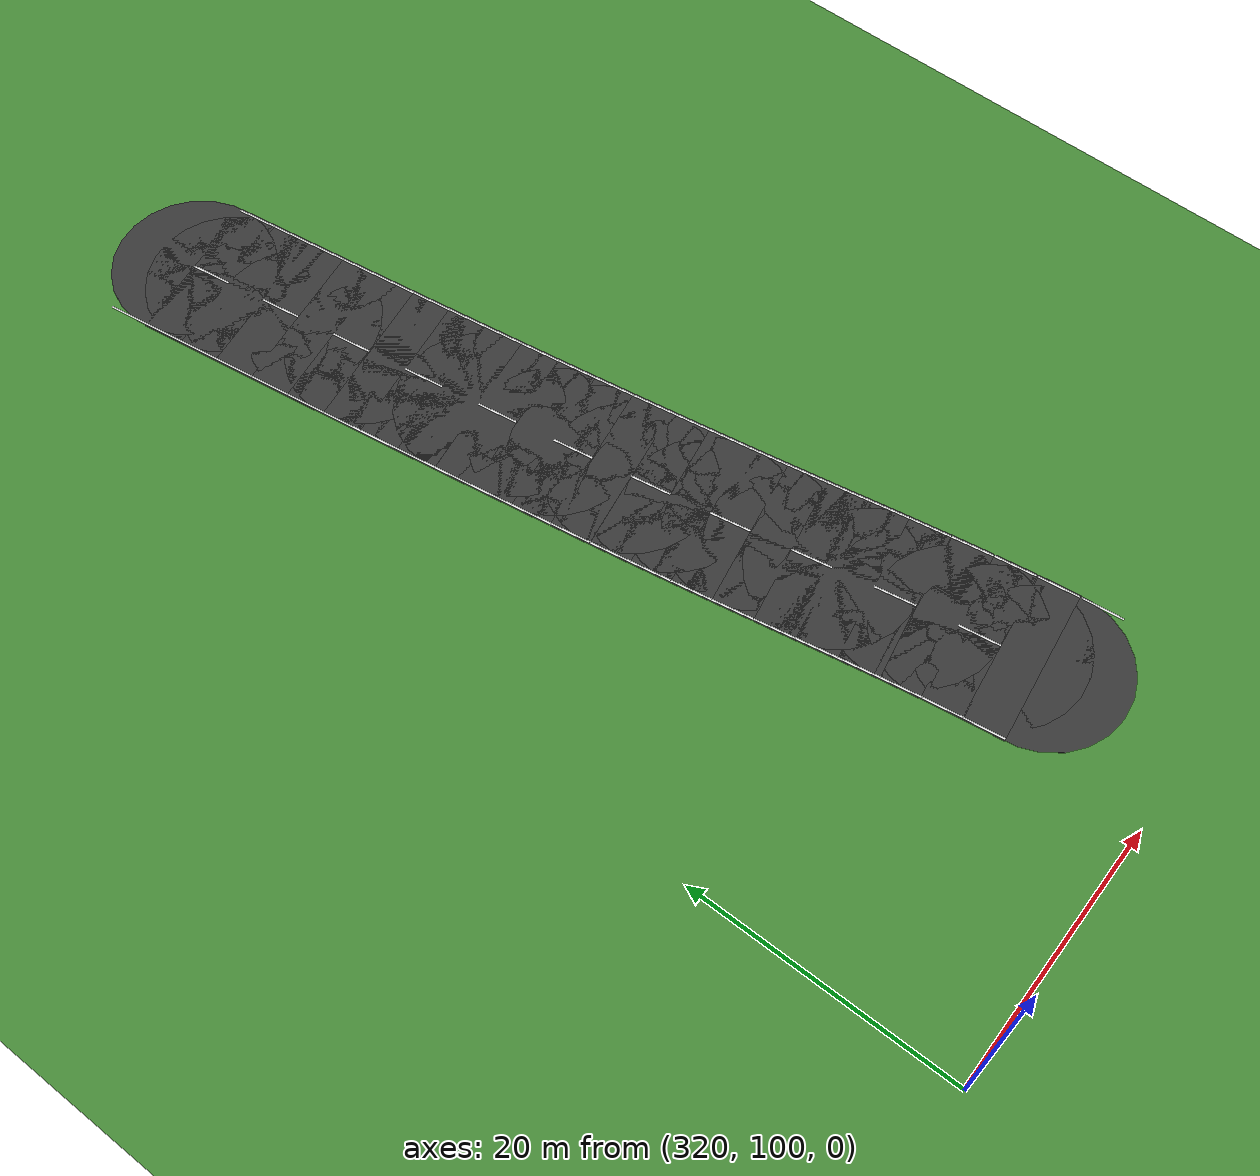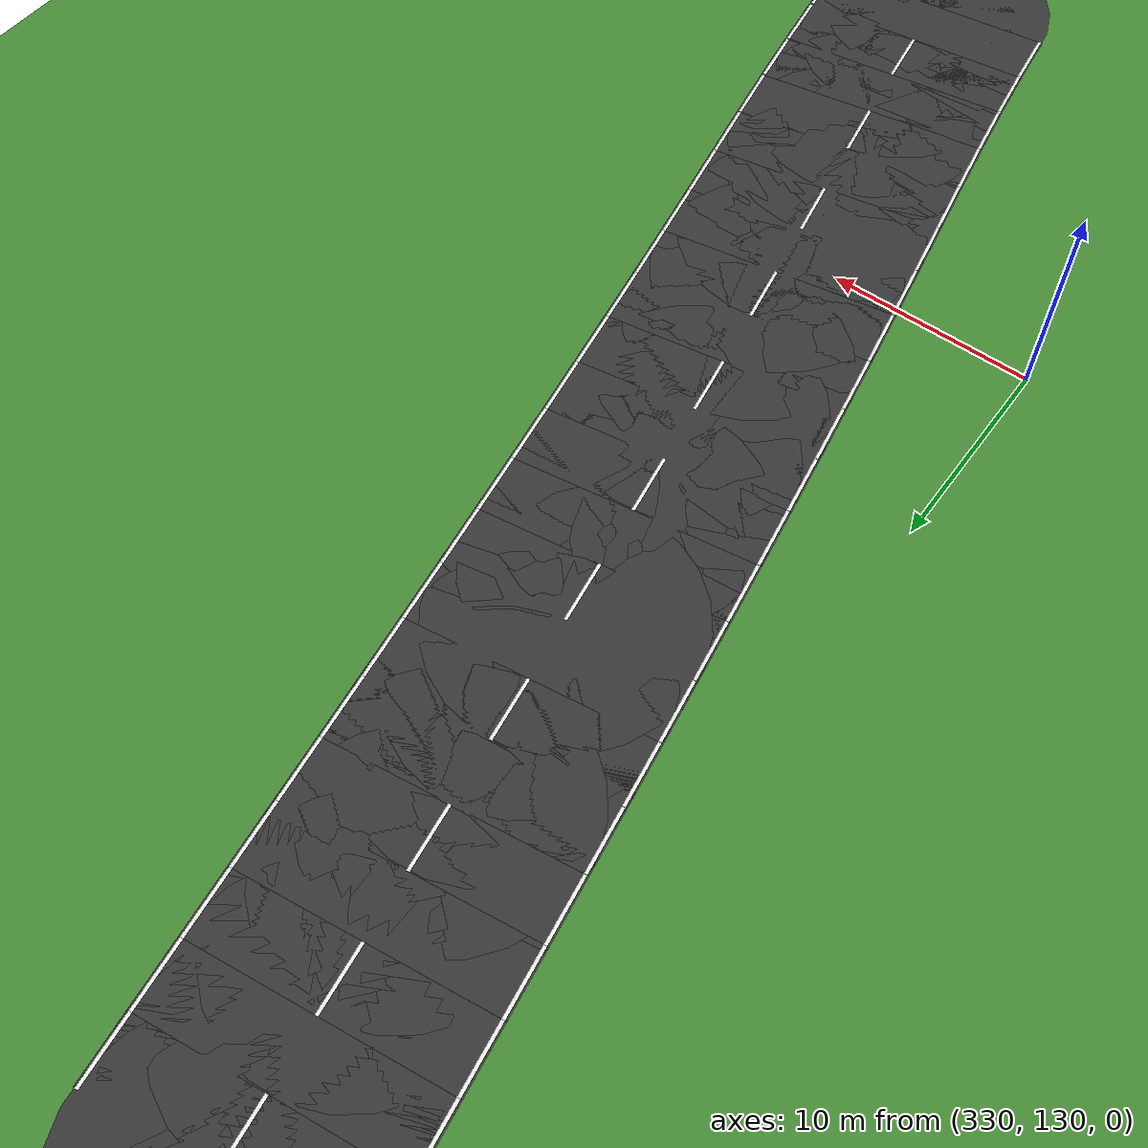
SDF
<sdf version="1.6">
 <world name="sem_silesia_ring_2026">
  <model name="ground_plane">
   <static>true</static>
   <link name="link">
    <collision name="collision">
     <geometry><plane><normal>0 0 1</normal><size>1200 1200</size></plane></geometry>
     <surface><friction><ode><mu>0.6</mu><mu2>0.6</mu2></ode></friction></surface>
    </collision>
    <visual name="visual">
     <geometry><plane><normal>0 0 1</normal><size>1200 1200</size></plane></geometry>
     <material><ambient>0.28 0.55 0.22 1</ambient><diffuse>0.28 0.55 0.22 1</diffuse></material>
    </visual>
   </link>
  </model>
  <model name="wl_R_s154">
   <static>true</static>
   <pose>351.8891 109.7286 0.0070 0 0 1.6789</pose>
   <link name="link">
    <visual name="v">
     <geometry><box><size>3.0025 0.1500 0.0080</size></box></geometry>
     <material><ambient>0.95 0.95 0.95 1</ambient><diffuse>0.95 0.95 0.95 1</diffuse></material>
    </visual>
   </link>
  </model>
  <model name="road_s155">
   <static>true</static>
   <pose>345.7161 112.0784 0.0030 0 0 1.7012</pose>
   <link name="link">
    <visual name="v">
     <geometry><box><size>3.0025 12.0000 0.0060</size></box></geometry>
     <material><ambient>0.22 0.22 0.22 1</ambient><diffuse>0.22 0.22 0.22 1</diffuse></material>
    </visual>
    <collision name="c">
     <geometry><box><size>3.0025 12.0000 0.0060</size></box></geometry>
     <surface><friction><ode><mu>0.9</mu><mu2>0.9</mu2></ode></friction></surface>
    </collision>
   </link>
  </model>
  <model name="road_jnt155">
   <static>true</static>
   <pose>345.9113 110.5899 0.0030 0 0 0</pose>
   <link name="link">
    <visual name="v">
     <geometry><cylinder><radius>6.0000</radius><length>0.0060</length></cylinder></geometry>
     <material><ambient>0.22 0.22 0.22 1</ambient><diffuse>0.22 0.22 0.22 1</diffuse></material>
    </visual>
    <collision name="c">
     <geometry><cylinder><radius>6.0000</radius><length>0.0060</length></cylinder></geometry>
     <surface><friction><ode><mu>0.9</mu><mu2>0.9</mu2></ode></friction></surface>
    </collision>
   </link>
  </model>
  <model name="wl_L_s155">
   <static>true</static>
   <pose>339.9158 111.3176 0.0070 0 0 1.7012</pose>
   <link name="link">
    <visual name="v">
     <geometry><box><size>3.0025 0.1500 0.0080</size></box></geometry>
     <material><ambient>0.95 0.95 0.95 1</ambient><diffuse>0.95 0.95 0.95 1</diffuse></material>
    </visual>
   </link>
  </model>
  <model name="wl_R_s155">
   <static>true</static>
   <pose>351.5164 112.8391 0.0070 0 0 1.7012</pose>
   <link name="link">
    <visual name="v">
     <geometry><box><size>3.0025 0.1500 0.0080</size></box></geometry>
     <material><ambient>0.95 0.95 0.95 1</ambient><diffuse>0.95 0.95 0.95 1</diffuse></material>
    </visual>
   </link>
  </model>
  <model name="road_s156">
   <static>true</static>
   <pose>345.2984 115.0515 0.0030 0 0 1.7195</pose>
   <link name="link">
    <visual name="v">
     <geometry><box><size>3.0025 12.0000 0.0060</size></box></geometry>
     <material><ambient>0.22 0.22 0.22 1</ambient><diffuse>0.22 0.22 0.22 1</diffuse></material>
    </visual>
    <collision name="c">
     <geometry><box><size>3.0025 12.0000 0.0060</size></box></geometry>
     <surface><friction><ode><mu>0.9</mu><mu2>0.9</mu2></ode></friction></surface>
    </collision>
   </link>
  </model>
  <model name="road_jnt156">
   <static>true</static>
   <pose>345.5208 113.5669 0.0030 0 0 0</pose>
   <link name="link">
    <visual name="v">
     <geometry><cylinder><radius>6.0000</radius><length>0.0060</length></cylinder></geometry>
     <material><ambient>0.22 0.22 0.22 1</ambient><diffuse>0.22 0.22 0.22 1</diffuse></material>
    </visual>
    <collision name="c">
     <geometry><cylinder><radius>6.0000</radius><length>0.0060</length></cylinder></geometry>
     <surface><friction><ode><mu>0.9</mu><mu2>0.9</mu2></ode></friction></surface>
    </collision>
   </link>
  </model>
  <model name="wl_L_s156">
   <static>true</static>
   <pose>339.5130 114.1846 0.0070 0 0 1.7195</pose>
   <link name="link">
    <visual name="v">
     <geometry><box><size>3.0025 0.1500 0.0080</size></box></geometry>
     <material><ambient>0.95 0.95 0.95 1</ambient><diffuse>0.95 0.95 0.95 1</diffuse></material>
    </visual>
   </link>
  </model>
  <model name="wl_R_s156">
   <static>true</static>
   <pose>351.0838 115.9185 0.0070 0 0 1.7195</pose>
   <link name="link">
    <visual name="v">
     <geometry><box><size>3.0025 0.1500 0.0080</size></box></geometry>
     <material><ambient>0.95 0.95 0.95 1</ambient><diffuse>0.95 0.95 0.95 1</diffuse></material>
    </visual>
   </link>
  </model>
  <model name="cd_s156">
   <static>true</static>
   <pose>345.2984 115.0515 0.0070 0 0 1.7195</pose>
   <link name="link">
    <visual name="v">
     <geometry><box><size>3.0025 0.1500 0.0080</size></box></geometry>
     <material><ambient>0.95 0.95 0.95 1</ambient><diffuse>0.95 0.95 0.95 1</diffuse></material>
    </visual>
   </link>
  </model>
  <model name="road_s157">
   <static>true</static>
   <pose>344.8325 118.0176 0.0030 0 0 1.7337</pose>
   <link name="link">
    <visual name="v">
     <geometry><box><size>3.0025 12.0000 0.0060</size></box></geometry>
     <material><ambient>0.22 0.22 0.22 1</ambient><diffuse>0.22 0.22 0.22 1</diffuse></material>
    </visual>
    <collision name="c">
     <geometry><box><size>3.0025 12.0000 0.0060</size></box></geometry>
     <surface><friction><ode><mu>0.9</mu><mu2>0.9</mu2></ode></friction></surface>
    </collision>
   </link>
  </model>
  <model name="road_jnt157">
   <static>true</static>
   <pose>345.0759 116.5362 0.0030 0 0 0</pose>
   <link name="link">
    <visual name="v">
     <geometry><cylinder><radius>6.0000</radius><length>0.0060</length></cylinder></geometry>
     <material><ambient>0.22 0.22 0.22 1</ambient><diffuse>0.22 0.22 0.22 1</diffuse></material>
    </visual>
    <collision name="c">
     <geometry><cylinder><radius>6.0000</radius><length>0.0060</length></cylinder></geometry>
     <surface><friction><ode><mu>0.9</mu><mu2>0.9</mu2></ode></friction></surface>
    </collision>
   </link>
  </model>
  <model name="wl_L_s157">
   <static>true</static>
   <pose>339.0599 117.0690 0.0070 0 0 1.7337</pose>
   <link name="link">
    <visual name="v">
     <geometry><box><size>3.0025 0.1500 0.0080</size></box></geometry>
     <material><ambient>0.95 0.95 0.95 1</ambient><diffuse>0.95 0.95 0.95 1</diffuse></material>
    </visual>
   </link>
  </model>
  <model name="wl_R_s157">
   <static>true</static>
   <pose>350.6050 118.9663 0.0070 0 0 1.7337</pose>
   <link name="link">
    <visual name="v">
     <geometry><box><size>3.0025 0.1500 0.0080</size></box></geometry>
     <material><ambient>0.95 0.95 0.95 1</ambient><diffuse>0.95 0.95 0.95 1</diffuse></material>
    </visual>
   </link>
  </model>
  <model name="road_s158">
   <static>true</static>
   <pose>344.3310 120.9779 0.0030 0 0 1.7435</pose>
   <link name="link">
    <visual name="v">
     <geometry><box><size>3.0025 12.0000 0.0060</size></box></geometry>
     <material><ambient>0.22 0.22 0.22 1</ambient><diffuse>0.22 0.22 0.22 1</diffuse></material>
    </visual>
    <collision name="c">
     <geometry><box><size>3.0025 12.0000 0.0060</size></box></geometry>
     <surface><friction><ode><mu>0.9</mu><mu2>0.9</mu2></ode></friction></surface>
    </collision>
   </link>
  </model>
  <model name="road_jnt158">
   <static>true</static>
   <pose>344.5890 119.4990 0.0030 0 0 0</pose>
   <link name="link">
    <visual name="v">
     <geometry><cylinder><radius>6.0000</radius><length>0.0060</length></cylinder></geometry>
     <material><ambient>0.22 0.22 0.22 1</ambient><diffuse>0.22 0.22 0.22 1</diffuse></material>
    </visual>
    <collision name="c">
     <geometry><cylinder><radius>6.0000</radius><length>0.0060</length></cylinder></geometry>
     <surface><friction><ode><mu>0.9</mu><mu2>0.9</mu2></ode></friction></surface>
    </collision>
   </link>
  </model>
  <model name="wl_L_s158">
   <static>true</static>
   <pose>338.5680 119.9725 0.0070 0 0 1.7435</pose>
   <link name="link">
    <visual name="v">
     <geometry><box><size>3.0025 0.1500 0.0080</size></box></geometry>
     <material><ambient>0.95 0.95 0.95 1</ambient><diffuse>0.95 0.95 0.95 1</diffuse></material>
    </visual>
   </link>
  </model>
  <model name="wl_R_s158">
   <static>true</static>
   <pose>350.0939 121.9834 0.0070 0 0 1.7435</pose>
   <link name="link">
    <visual name="v">
     <geometry><box><size>3.0025 0.1500 0.0080</size></box></geometry>
     <material><ambient>0.95 0.95 0.95 1</ambient><diffuse>0.95 0.95 0.95 1</diffuse></material>
    </visual>
   </link>
  </model>
  <model name="cd_s158">
   <static>true</static>
   <pose>344.3310 120.9779 0.0070 0 0 1.7435</pose>
   <link name="link">
    <visual name="v">
     <geometry><box><size>3.0025 0.1500 0.0080</size></box></geometry>
     <material><ambient>0.95 0.95 0.95 1</ambient><diffuse>0.95 0.95 0.95 1</diffuse></material>
    </visual>
   </link>
  </model>
  <model name="road_s159">
   <static>true</static>
   <pose>343.8069 123.9343 0.0030 0 0 1.7490</pose>
   <link name="link">
    <visual name="v">
     <geometry><box><size>3.0025 12.0000 0.0060</size></box></geometry>
     <material><ambient>0.22 0.22 0.22 1</ambient><diffuse>0.22 0.22 0.22 1</diffuse></material>
    </visual>
    <collision name="c">
     <geometry><box><size>3.0025 12.0000 0.0060</size></box></geometry>
     <surface><friction><ode><mu>0.9</mu><mu2>0.9</mu2></ode></friction></surface>
    </collision>
   </link>
  </model>
  <model name="road_jnt159">
   <static>true</static>
   <pose>344.0730 122.4569 0.0030 0 0 0</pose>
   <link name="link">
    <visual name="v">
     <geometry><cylinder><radius>6.0000</radius><length>0.0060</length></cylinder></geometry>
     <material><ambient>0.22 0.22 0.22 1</ambient><diffuse>0.22 0.22 0.22 1</diffuse></material>
    </visual>
    <collision name="c">
     <geometry><cylinder><radius>6.0000</radius><length>0.0060</length></cylinder></geometry>
     <surface><friction><ode><mu>0.9</mu><mu2>0.9</mu2></ode></friction></surface>
    </collision>
   </link>
  </model>
  <model name="wl_L_s159">
   <static>true</static>
   <pose>338.0495 122.8974 0.0070 0 0 1.7490</pose>
   <link name="link">
    <visual name="v">
     <geometry><box><size>3.0025 0.1500 0.0080</size></box></geometry>
     <material><ambient>0.95 0.95 0.95 1</ambient><diffuse>0.95 0.95 0.95 1</diffuse></material>
    </visual>
   </link>
  </model>
  <model name="wl_R_s159">
   <static>true</static>
   <pose>349.5642 124.9713 0.0070 0 0 1.7490</pose>
   <link name="link">
    <visual name="v">
     <geometry><box><size>3.0025 0.1500 0.0080</size></box></geometry>
     <material><ambient>0.95 0.95 0.95 1</ambient><diffuse>0.95 0.95 0.95 1</diffuse></material>
    </visual>
   </link>
  </model>
  <model name="road_s160">
   <static>true</static>
   <pose>343.2731 126.8891 0.0030 0 0 1.7500</pose>
   <link name="link">
    <visual name="v">
     <geometry><box><size>3.0025 12.0000 0.0060</size></box></geometry>
     <material><ambient>0.22 0.22 0.22 1</ambient><diffuse>0.22 0.22 0.22 1</diffuse></material>
    </visual>
    <collision name="c">
     <geometry><box><size>3.0025 12.0000 0.0060</size></box></geometry>
     <surface><friction><ode><mu>0.9</mu><mu2>0.9</mu2></ode></friction></surface>
    </collision>
   </link>
  </model>
  <model name="road_jnt160">
   <static>true</static>
   <pose>343.5408 125.4118 0.0030 0 0 0</pose>
   <link name="link">
    <visual name="v">
     <geometry><cylinder><radius>6.0000</radius><length>0.0060</length></cylinder></geometry>
     <material><ambient>0.22 0.22 0.22 1</ambient><diffuse>0.22 0.22 0.22 1</diffuse></material>
    </visual>
    <collision name="c">
     <geometry><cylinder><radius>6.0000</radius><length>0.0060</length></cylinder></geometry>
     <surface><friction><ode><mu>0.9</mu><mu2>0.9</mu2></ode></friction></surface>
    </collision>
   </link>
  </model>
  <model name="wl_L_s160">
   <static>true</static>
   <pose>337.5168 125.8460 0.0070 0 0 1.7500</pose>
   <link name="link">
    <visual name="v">
     <geometry><box><size>3.0025 0.1500 0.0080</size></box></geometry>
     <material><ambient>0.95 0.95 0.95 1</ambient><diffuse>0.95 0.95 0.95 1</diffuse></material>
    </visual>
   </link>
  </model>
  <model name="wl_R_s160">
   <static>true</static>
   <pose>349.0294 127.9321 0.0070 0 0 1.7500</pose>
   <link name="link">
    <visual name="v">
     <geometry><box><size>3.0025 0.1500 0.0080</size></box></geometry>
     <material><ambient>0.95 0.95 0.95 1</ambient><diffuse>0.95 0.95 0.95 1</diffuse></material>
    </visual>
   </link>
  </model>
  <model name="cd_s160">
   <static>true</static>
   <pose>343.2731 126.8891 0.0070 0 0 1.7500</pose>
   <link name="link">
    <visual name="v">
     <geometry><box><size>3.0025 0.1500 0.0080</size></box></geometry>
     <material><ambient>0.95 0.95 0.95 1</ambient><diffuse>0.95 0.95 0.95 1</diffuse></material>
    </visual>
   </link>
  </model>
  <model name="road_s161">
   <static>true</static>
   <pose>342.7423 129.8443 0.0030 0 0 1.7470</pose>
   <link name="link">
    <visual name="v">
     <geometry><box><size>3.0025 12.0000 0.0060</size></box></geometry>
     <material><ambient>0.22 0.22 0.22 1</ambient><diffuse>0.22 0.22 0.22 1</diffuse></material>
    </visual>
    <collision name="c">
     <geometry><box><size>3.0025 12.0000 0.0060</size></box></geometry>
     <surface><friction><ode><mu>0.9</mu><mu2>0.9</mu2></ode></friction></surface>
    </collision>
   </link>
  </model>
  <model name="road_jnt161">
   <static>true</static>
   <pose>343.0054 128.3663 0.0030 0 0 0</pose>
   <link name="link">
    <visual name="v">
     <geometry><cylinder><radius>6.0000</radius><length>0.0060</length></cylinder></geometry>
     <material><ambient>0.22 0.22 0.22 1</ambient><diffuse>0.22 0.22 0.22 1</diffuse></material>
    </visual>
    <collision name="c">
     <geometry><cylinder><radius>6.0000</radius><length>0.0060</length></cylinder></geometry>
     <surface><friction><ode><mu>0.9</mu><mu2>0.9</mu2></ode></friction></surface>
    </collision>
   </link>
  </model>
  <model name="wl_L_s161">
   <static>true</static>
   <pose>336.9828 128.8188 0.0070 0 0 1.7470</pose>
   <link name="link">
    <visual name="v">
     <geometry><box><size>3.0025 0.1500 0.0080</size></box></geometry>
     <material><ambient>0.95 0.95 0.95 1</ambient><diffuse>0.95 0.95 0.95 1</diffuse></material>
    </visual>
   </link>
  </model>
  <model name="wl_R_s161">
   <static>true</static>
   <pose>348.5017 130.8698 0.0070 0 0 1.7470</pose>
   <link name="link">
    <visual name="v">
     <geometry><box><size>3.0025 0.1500 0.0080</size></box></geometry>
     <material><ambient>0.95 0.95 0.95 1</ambient><diffuse>0.95 0.95 0.95 1</diffuse></material>
    </visual>
   </link>
  </model>
  <model name="road_s162">
   <static>true</static>
   <pose>342.2223 132.8015 0.0030 0 0 1.7427</pose>
   <link name="link">
    <visual name="v">
     <geometry><box><size>3.0025 12.0000 0.0060</size></box></geometry>
     <material><ambient>0.22 0.22 0.22 1</ambient><diffuse>0.22 0.22 0.22 1</diffuse></material>
    </visual>
    <collision name="c">
     <geometry><box><size>3.0025 12.0000 0.0060</size></box></geometry>
     <surface><friction><ode><mu>0.9</mu><mu2>0.9</mu2></ode></friction></surface>
    </collision>
   </link>
  </model>
  <model name="road_jnt162">
   <static>true</static>
   <pose>342.4791 131.3223 0.0030 0 0 0</pose>
   <link name="link">
    <visual name="v">
     <geometry><cylinder><radius>6.0000</radius><length>0.0060</length></cylinder></geometry>
     <material><ambient>0.22 0.22 0.22 1</ambient><diffuse>0.22 0.22 0.22 1</diffuse></material>
    </visual>
    <collision name="c">
     <geometry><cylinder><radius>6.0000</radius><length>0.0060</length></cylinder></geometry>
     <surface><friction><ode><mu>0.9</mu><mu2>0.9</mu2></ode></friction></surface>
    </collision>
   </link>
  </model>
  <model name="wl_L_s162">
   <static>true</static>
   <pose>336.4585 131.8008 0.0070 0 0 1.7427</pose>
   <link name="link">
    <visual name="v">
     <geometry><box><size>3.0025 0.1500 0.0080</size></box></geometry>
     <material><ambient>0.95 0.95 0.95 1</ambient><diffuse>0.95 0.95 0.95 1</diffuse></material>
    </visual>
   </link>
  </model>
  <model name="wl_R_s162">
   <static>true</static>
   <pose>347.9861 133.8021 0.0070 0 0 1.7427</pose>
   <link name="link">
    <visual name="v">
     <geometry><box><size>3.0025 0.1500 0.0080</size></box></geometry>
     <material><ambient>0.95 0.95 0.95 1</ambient><diffuse>0.95 0.95 0.95 1</diffuse></material>
    </visual>
   </link>
  </model>
  <model name="cd_s162">
   <static>true</static>
   <pose>342.2223 132.8015 0.0070 0 0 1.7427</pose>
   <link name="link">
    <visual name="v">
     <geometry><box><size>3.0025 0.1500 0.0080</size></box></geometry>
     <material><ambient>0.95 0.95 0.95 1</ambient><diffuse>0.95 0.95 0.95 1</diffuse></material>
    </visual>
   </link>
  </model>
  <model name="road_s163">
   <static>true</static>
   <pose>341.7147 135.7608 0.0030 0 0 1.7387</pose>
   <link name="link">
    <visual name="v">
     <geometry><box><size>3.0025 12.0000 0.0060</size></box></geometry>
     <material><ambient>0.22 0.22 0.22 1</ambient><diffuse>0.22 0.22 0.22 1</diffuse></material>
    </visual>
    <collision name="c">
     <geometry><box><size>3.0025 12.0000 0.0060</size></box></geometry>
     <surface><friction><ode><mu>0.9</mu><mu2>0.9</mu2></ode></friction></surface>
    </collision>
   </link>
  </model>
  <model name="road_jnt163">
   <static>true</static>
   <pose>341.9655 134.2806 0.0030 0 0 0</pose>
   <link name="link">
    <visual name="v">
     <geometry><cylinder><radius>6.0000</radius><length>0.0060</length></cylinder></geometry>
     <material><ambient>0.22 0.22 0.22 1</ambient><diffuse>0.22 0.22 0.22 1</diffuse></material>
    </visual>
    <collision name="c">
     <geometry><cylinder><radius>6.0000</radius><length>0.0060</length></cylinder></geometry>
     <surface><friction><ode><mu>0.9</mu><mu2>0.9</mu2></ode></friction></surface>
    </collision>
   </link>
  </model>
  <model name="wl_L_s163">
   <static>true</static>
   <pose>335.9469 134.7834 0.0070 0 0 1.7387</pose>
   <link name="link">
    <visual name="v">
     <geometry><box><size>3.0025 0.1500 0.0080</size></box></geometry>
     <material><ambient>0.95 0.95 0.95 1</ambient><diffuse>0.95 0.95 0.95 1</diffuse></material>
    </visual>
   </link>
  </model>
  <model name="wl_R_s163">
   <static>true</static>
   <pose>347.4824 136.7382 0.0070 0 0 1.7387</pose>
   <link name="link">
    <visual name="v">
     <geometry><box><size>3.0025 0.1500 0.0080</size></box></geometry>
     <material><ambient>0.95 0.95 0.95 1</ambient><diffuse>0.95 0.95 0.95 1</diffuse></material>
    </visual>
   </link>
  </model>
  <model name="road_s164">
   <static>true</static>
   <pose>341.2185 138.7220 0.0030 0 0 1.7349</pose>
   <link name="link">
    <visual name="v">
     <geometry><box><size>3.0025 12.0000 0.0060</size></box></geometry>
     <material><ambient>0.22 0.22 0.22 1</ambient><diffuse>0.22 0.22 0.22 1</diffuse></material>
    </visual>
    <collision name="c">
     <geometry><box><size>3.0025 12.0000 0.0060</size></box></geometry>
     <surface><friction><ode><mu>0.9</mu><mu2>0.9</mu2></ode></friction></surface>
    </collision>
   </link>
  </model>
  <model name="road_jnt164">
   <static>true</static>
   <pose>341.4638 137.2409 0.0030 0 0 0</pose>
   <link name="link">
    <visual name="v">
     <geometry><cylinder><radius>6.0000</radius><length>0.0060</length></cylinder></geometry>
     <material><ambient>0.22 0.22 0.22 1</ambient><diffuse>0.22 0.22 0.22 1</diffuse></material>
    </visual>
    <collision name="c">
     <geometry><cylinder><radius>6.0000</radius><length>0.0060</length></cylinder></geometry>
     <surface><friction><ode><mu>0.9</mu><mu2>0.9</mu2></ode></friction></surface>
    </collision>
   </link>
  </model>
  <model name="wl_L_s164">
   <static>true</static>
   <pose>335.4472 137.7661 0.0070 0 0 1.7349</pose>
   <link name="link">
    <visual name="v">
     <geometry><box><size>3.0025 0.1500 0.0080</size></box></geometry>
     <material><ambient>0.95 0.95 0.95 1</ambient><diffuse>0.95 0.95 0.95 1</diffuse></material>
    </visual>
   </link>
  </model>
  <model name="wl_R_s164">
   <static>true</static>
   <pose>346.9899 139.6780 0.0070 0 0 1.7349</pose>
   <link name="link">
    <visual name="v">
     <geometry><box><size>3.0025 0.1500 0.0080</size></box></geometry>
     <material><ambient>0.95 0.95 0.95 1</ambient><diffuse>0.95 0.95 0.95 1</diffuse></material>
    </visual>
   </link>
  </model>
  <model name="cd_s164">
   <static>true</static>
   <pose>341.2185 138.7220 0.0070 0 0 1.7349</pose>
   <link name="link">
    <visual name="v">
     <geometry><box><size>3.0025 0.1500 0.0080</size></box></geometry>
     <material><ambient>0.95 0.95 0.95 1</ambient><diffuse>0.95 0.95 0.95 1</diffuse></material>
    </visual>
   </link>
  </model>
  <model name="road_s165">
   <static>true</static>
   <pose>340.7330 141.6850 0.0030 0 0 1.7315</pose>
   <link name="link">
    <visual name="v">
     <geometry><box><size>3.0025 12.0000 0.0060</size></box></geometry>
     <material><ambient>0.22 0.22 0.22 1</ambient><diffuse>0.22 0.22 0.22 1</diffuse></material>
    </visual>
    <collision name="c">
     <geometry><box><size>3.0025 12.0000 0.0060</size></box></geometry>
     <surface><friction><ode><mu>0.9</mu><mu2>0.9</mu2></ode></friction></surface>
    </collision>
   </link>
  </model>
  <model name="road_jnt165">
   <static>true</static>
   <pose>340.9732 140.2031 0.0030 0 0 0</pose>
   <link name="link">
    <visual name="v">
     <geometry><cylinder><radius>6.0000</radius><length>0.0060</length></cylinder></geometry>
     <material><ambient>0.22 0.22 0.22 1</ambient><diffuse>0.22 0.22 0.22 1</diffuse></material>
    </visual>
    <collision name="c">
     <geometry><cylinder><radius>6.0000</radius><length>0.0060</length></cylinder></geometry>
     <surface><friction><ode><mu>0.9</mu><mu2>0.9</mu2></ode></friction></surface>
    </collision>
   </link>
  </model>
  <model name="wl_L_s165">
   <static>true</static>
   <pose>334.9584 140.7488 0.0070 0 0 1.7315</pose>
   <link name="link">
    <visual name="v">
     <geometry><box><size>3.0025 0.1500 0.0080</size></box></geometry>
     <material><ambient>0.95 0.95 0.95 1</ambient><diffuse>0.95 0.95 0.95 1</diffuse></material>
    </visual>
   </link>
  </model>
  <model name="wl_R_s165">
   <static>true</static>
   <pose>346.5076 142.6212 0.0070 0 0 1.7315</pose>
   <link name="link">
    <visual name="v">
     <geometry><box><size>3.0025 0.1500 0.0080</size></box></geometry>
     <material><ambient>0.95 0.95 0.95 1</ambient><diffuse>0.95 0.95 0.95 1</diffuse></material>
    </visual>
   </link>
  </model>
  <model name="road_s166">
   <static>true</static>
   <pose>340.2571 144.6496 0.0030 0 0 1.7284</pose>
   <link name="link">
    <visual name="v">
     <geometry><box><size>3.0025 12.0000 0.0060</size></box></geometry>
     <material><ambient>0.22 0.22 0.22 1</ambient><diffuse>0.22 0.22 0.22 1</diffuse></material>
    </visual>
    <collision name="c">
     <geometry><box><size>3.0025 12.0000 0.0060</size></box></geometry>
     <surface><friction><ode><mu>0.9</mu><mu2>0.9</mu2></ode></friction></surface>
    </collision>
   </link>
  </model>
  <model name="road_jnt166">
   <static>true</static>
   <pose>340.4927 143.1669 0.0030 0 0 0</pose>
   <link name="link">
    <visual name="v">
     <geometry><cylinder><radius>6.0000</radius><length>0.0060</length></cylinder></geometry>
     <material><ambient>0.22 0.22 0.22 1</ambient><diffuse>0.22 0.22 0.22 1</diffuse></material>
    </visual>
    <collision name="c">
     <geometry><cylinder><radius>6.0000</radius><length>0.0060</length></cylinder></geometry>
     <surface><friction><ode><mu>0.9</mu><mu2>0.9</mu2></ode></friction></surface>
    </collision>
   </link>
  </model>
  <model name="wl_L_s166">
   <static>true</static>
   <pose>334.4796 143.7315 0.0070 0 0 1.7284</pose>
   <link name="link">
    <visual name="v">
     <geometry><box><size>3.0025 0.1500 0.0080</size></box></geometry>
     <material><ambient>0.95 0.95 0.95 1</ambient><diffuse>0.95 0.95 0.95 1</diffuse></material>
    </visual>
   </link>
  </model>
  <model name="wl_R_s166">
   <static>true</static>
   <pose>346.0346 145.5677 0.0070 0 0 1.7284</pose>
   <link name="link">
    <visual name="v">
     <geometry><box><size>3.0025 0.1500 0.0080</size></box></geometry>
     <material><ambient>0.95 0.95 0.95 1</ambient><diffuse>0.95 0.95 0.95 1</diffuse></material>
    </visual>
   </link>
  </model>
  <model name="cd_s166">
   <static>true</static>
   <pose>340.2571 144.6496 0.0070 0 0 1.7284</pose>
   <link name="link">
    <visual name="v">
     <geometry><box><size>3.0025 0.1500 0.0080</size></box></geometry>
     <material><ambient>0.95 0.95 0.95 1</ambient><diffuse>0.95 0.95 0.95 1</diffuse></material>
    </visual>
   </link>
  </model>
  <model name="road_s167">
   <static>true</static>
   <pose>339.7901 147.6156 0.0030 0 0 1.7256</pose>
   <link name="link">
    <visual name="v">
     <geometry><box><size>3.0025 12.0000 0.0060</size></box></geometry>
     <material><ambient>0.22 0.22 0.22 1</ambient><diffuse>0.22 0.22 0.22 1</diffuse></material>
    </visual>
    <collision name="c">
     <geometry><box><size>3.0025 12.0000 0.0060</size></box></geometry>
     <surface><friction><ode><mu>0.9</mu><mu2>0.9</mu2></ode></friction></surface>
    </collision>
   </link>
  </model>
  <model name="road_jnt167">
   <static>true</static>
   <pose>340.0215 146.1323 0.0030 0 0 0</pose>
   <link name="link">
    <visual name="v">
     <geometry><cylinder><radius>6.0000</radius><length>0.0060</length></cylinder></geometry>
     <material><ambient>0.22 0.22 0.22 1</ambient><diffuse>0.22 0.22 0.22 1</diffuse></material>
    </visual>
    <collision name="c">
     <geometry><cylinder><radius>6.0000</radius><length>0.0060</length></cylinder></geometry>
     <surface><friction><ode><mu>0.9</mu><mu2>0.9</mu2></ode></friction></surface>
    </collision>
   </link>
  </model>
  <model name="wl_L_s167">
   <static>true</static>
   <pose>334.0100 146.7139 0.0070 0 0 1.7256</pose>
   <link name="link">
    <visual name="v">
     <geometry><box><size>3.0025 0.1500 0.0080</size></box></geometry>
     <material><ambient>0.95 0.95 0.95 1</ambient><diffuse>0.95 0.95 0.95 1</diffuse></material>
    </visual>
   </link>
  </model>
  <model name="wl_R_s167">
   <static>true</static>
   <pose>345.5701 148.5173 0.0070 0 0 1.7256</pose>
   <link name="link">
    <visual name="v">
     <geometry><box><size>3.0025 0.1500 0.0080</size></box></geometry>
     <material><ambient>0.95 0.95 0.95 1</ambient><diffuse>0.95 0.95 0.95 1</diffuse></material>
    </visual>
   </link>
  </model>
  <model name="road_s168">
   <static>true</static>
   <pose>339.3310 150.5828 0.0030 0 0 1.7230</pose>
   <link name="link">
    <visual name="v">
     <geometry><box><size>3.0025 12.0000 0.0060</size></box></geometry>
     <material><ambient>0.22 0.22 0.22 1</ambient><diffuse>0.22 0.22 0.22 1</diffuse></material>
    </visual>
    <collision name="c">
     <geometry><box><size>3.0025 12.0000 0.0060</size></box></geometry>
     <surface><friction><ode><mu>0.9</mu><mu2>0.9</mu2></ode></friction></surface>
    </collision>
   </link>
  </model>
  <model name="road_jnt168">
   <static>true</static>
   <pose>339.5586 149.0989 0.0030 0 0 0</pose>
   <link name="link">
    <visual name="v">
     <geometry><cylinder><radius>6.0000</radius><length>0.0060</length></cylinder></geometry>
     <material><ambient>0.22 0.22 0.22 1</ambient><diffuse>0.22 0.22 0.22 1</diffuse></material>
    </visual>
    <collision name="c">
     <geometry><cylinder><radius>6.0000</radius><length>0.0060</length></cylinder></geometry>
     <surface><friction><ode><mu>0.9</mu><mu2>0.9</mu2></ode></friction></surface>
    </collision>
   </link>
  </model>
  <model name="wl_L_s168">
   <static>true</static>
   <pose>333.5486 149.6958 0.0070 0 0 1.7230</pose>
   <link name="link">
    <visual name="v">
     <geometry><box><size>3.0025 0.1500 0.0080</size></box></geometry>
     <material><ambient>0.95 0.95 0.95 1</ambient><diffuse>0.95 0.95 0.95 1</diffuse></material>
    </visual>
   </link>
  </model>
  <model name="wl_R_s168">
   <static>true</static>
   <pose>345.1134 151.4698 0.0070 0 0 1.7230</pose>
   <link name="link">
    <visual name="v">
     <geometry><box><size>3.0025 0.1500 0.0080</size></box></geometry>
     <material><ambient>0.95 0.95 0.95 1</ambient><diffuse>0.95 0.95 0.95 1</diffuse></material>
    </visual>
   </link>
  </model>
  <model name="cd_s168">
   <static>true</static>
   <pose>339.3310 150.5828 0.0070 0 0 1.7230</pose>
   <link name="link">
    <visual name="v">
     <geometry><box><size>3.0025 0.1500 0.0080</size></box></geometry>
     <material><ambient>0.95 0.95 0.95 1</ambient><diffuse>0.95 0.95 0.95 1</diffuse></material>
    </visual>
   </link>
  </model>
  <model name="road_s169">
   <static>true</static>
   <pose>338.8791 153.5512 0.0030 0 0 1.7207</pose>
   <link name="link">
    <visual name="v">
     <geometry><box><size>3.0025 12.0000 0.0060</size></box></geometry>
     <material><ambient>0.22 0.22 0.22 1</ambient><diffuse>0.22 0.22 0.22 1</diffuse></material>
    </visual>
    <collision name="c">
     <geometry><box><size>3.0025 12.0000 0.0060</size></box></geometry>
     <surface><friction><ode><mu>0.9</mu><mu2>0.9</mu2></ode></friction></surface>
    </collision>
   </link>
  </model>
  <model name="road_jnt169">
   <static>true</static>
   <pose>339.1034 152.0667 0.0030 0 0 0</pose>
   <link name="link">
    <visual name="v">
     <geometry><cylinder><radius>6.0000</radius><length>0.0060</length></cylinder></geometry>
     <material><ambient>0.22 0.22 0.22 1</ambient><diffuse>0.22 0.22 0.22 1</diffuse></material>
    </visual>
    <collision name="c">
     <geometry><cylinder><radius>6.0000</radius><length>0.0060</length></cylinder></geometry>
     <surface><friction><ode><mu>0.9</mu><mu2>0.9</mu2></ode></friction></surface>
    </collision>
   </link>
  </model>
  <model name="wl_L_s169">
   <static>true</static>
   <pose>333.0948 152.6773 0.0070 0 0 1.7207</pose>
   <link name="link">
    <visual name="v">
     <geometry><box><size>3.0025 0.1500 0.0080</size></box></geometry>
     <material><ambient>0.95 0.95 0.95 1</ambient><diffuse>0.95 0.95 0.95 1</diffuse></material>
    </visual>
   </link>
  </model>
  <model name="wl_R_s169">
   <static>true</static>
   <pose>344.6635 154.4250 0.0070 0 0 1.7207</pose>
   <link name="link">
    <visual name="v">
     <geometry><box><size>3.0025 0.1500 0.0080</size></box></geometry>
     <material><ambient>0.95 0.95 0.95 1</ambient><diffuse>0.95 0.95 0.95 1</diffuse></material>
    </visual>
   </link>
  </model>
  <model name="road_s170">
   <static>true</static>
   <pose>338.4336 156.5205 0.0030 0 0 1.7187</pose>
   <link name="link">
    <visual name="v">
     <geometry><box><size>3.0025 12.0000 0.0060</size></box></geometry>
     <material><ambient>0.22 0.22 0.22 1</ambient><diffuse>0.22 0.22 0.22 1</diffuse></material>
    </visual>
    <collision name="c">
     <geometry><box><size>3.0025 12.0000 0.0060</size></box></geometry>
     <surface><friction><ode><mu>0.9</mu><mu2>0.9</mu2></ode></friction></surface>
    </collision>
   </link>
  </model>
  <model name="road_jnt170">
   <static>true</static>
   <pose>338.6549 155.0356 0.0030 0 0 0</pose>
   <link name="link">
    <visual name="v">
     <geometry><cylinder><radius>6.0000</radius><length>0.0060</length></cylinder></geometry>
     <material><ambient>0.22 0.22 0.22 1</ambient><diffuse>0.22 0.22 0.22 1</diffuse></material>
    </visual>
    <collision name="c">
     <geometry><cylinder><radius>6.0000</radius><length>0.0060</length></cylinder></geometry>
     <surface><friction><ode><mu>0.9</mu><mu2>0.9</mu2></ode></friction></surface>
    </collision>
   </link>
  </model>
  <model name="wl_L_s170">
   <static>true</static>
   <pose>332.6475 155.6581 0.0070 0 0 1.7187</pose>
   <link name="link">
    <visual name="v">
     <geometry><box><size>3.0025 0.1500 0.0080</size></box></geometry>
     <material><ambient>0.95 0.95 0.95 1</ambient><diffuse>0.95 0.95 0.95 1</diffuse></material>
    </visual>
   </link>
  </model>
  <model name="wl_R_s170">
   <static>true</static>
   <pose>344.2197 157.3828 0.0070 0 0 1.7187</pose>
   <link name="link">
    <visual name="v">
     <geometry><box><size>3.0025 0.1500 0.0080</size></box></geometry>
     <material><ambient>0.95 0.95 0.95 1</ambient><diffuse>0.95 0.95 0.95 1</diffuse></material>
    </visual>
   </link>
  </model>
  <model name="cd_s170">
   <static>true</static>
   <pose>338.4336 156.5205 0.0070 0 0 1.7187</pose>
   <link name="link">
    <visual name="v">
     <geometry><box><size>3.0025 0.1500 0.0080</size></box></geometry>
     <material><ambient>0.95 0.95 0.95 1</ambient><diffuse>0.95 0.95 0.95 1</diffuse></material>
    </visual>
   </link>
  </model>
  <model name="road_s171">
   <static>true</static>
   <pose>337.9935 159.4906 0.0030 0 0 1.7170</pose>
   <link name="link">
    <visual name="v">
     <geometry><box><size>3.0025 12.0000 0.0060</size></box></geometry>
     <material><ambient>0.22 0.22 0.22 1</ambient><diffuse>0.22 0.22 0.22 1</diffuse></material>
    </visual>
    <collision name="c">
     <geometry><box><size>3.0025 12.0000 0.0060</size></box></geometry>
     <surface><friction><ode><mu>0.9</mu><mu2>0.9</mu2></ode></friction></surface>
    </collision>
   </link>
  </model>
  <model name="road_jnt171">
   <static>true</static>
   <pose>338.2123 158.0053 0.0030 0 0 0</pose>
   <link name="link">
    <visual name="v">
     <geometry><cylinder><radius>6.0000</radius><length>0.0060</length></cylinder></geometry>
     <material><ambient>0.22 0.22 0.22 1</ambient><diffuse>0.22 0.22 0.22 1</diffuse></material>
    </visual>
    <collision name="c">
     <geometry><cylinder><radius>6.0000</radius><length>0.0060</length></cylinder></geometry>
     <surface><friction><ode><mu>0.9</mu><mu2>0.9</mu2></ode></friction></surface>
    </collision>
   </link>
  </model>
  <model name="wl_L_s171">
   <static>true</static>
   <pose>332.2059 158.6381 0.0070 0 0 1.7170</pose>
   <link name="link">
    <visual name="v">
     <geometry><box><size>3.0025 0.1500 0.0080</size></box></geometry>
     <material><ambient>0.95 0.95 0.95 1</ambient><diffuse>0.95 0.95 0.95 1</diffuse></material>
    </visual>
   </link>
  </model>
  <model name="wl_R_s171">
   <static>true</static>
   <pose>343.7811 160.3430 0.0070 0 0 1.7170</pose>
   <link name="link">
    <visual name="v">
     <geometry><box><size>3.0025 0.1500 0.0080</size></box></geometry>
     <material><ambient>0.95 0.95 0.95 1</ambient><diffuse>0.95 0.95 0.95 1</diffuse></material>
    </visual>
   </link>
  </model>
  <model name="road_s172">
   <static>true</static>
   <pose>337.5581 162.4614 0.0030 0 0 1.7156</pose>
   <link name="link">
    <visual name="v">
     <geometry><box><size>3.0025 12.0000 0.0060</size></box></geometry>
     <material><ambient>0.22 0.22 0.22 1</ambient><diffuse>0.22 0.22 0.22 1</diffuse></material>
    </visual>
    <collision name="c">
     <geometry><box><size>3.0025 12.0000 0.0060</size></box></geometry>
     <surface><friction><ode><mu>0.9</mu><mu2>0.9</mu2></ode></friction></surface>
    </collision>
   </link>
  </model>
  <model name="road_jnt172">
   <static>true</static>
   <pose>337.7747 160.9758 0.0030 0 0 0</pose>
   <link name="link">
    <visual name="v">
     <geometry><cylinder><radius>6.0000</radius><length>0.0060</length></cylinder></geometry>
     <material><ambient>0.22 0.22 0.22 1</ambient><diffuse>0.22 0.22 0.22 1</diffuse></material>
    </visual>
    <collision name="c">
     <geometry><cylinder><radius>6.0000</radius><length>0.0060</length></cylinder></geometry>
     <surface><friction><ode><mu>0.9</mu><mu2>0.9</mu2></ode></friction></surface>
    </collision>
   </link>
  </model>
  <model name="wl_L_s172">
   <static>true</static>
   <pose>331.7693 161.6172 0.0070 0 0 1.7156</pose>
   <link name="link">
    <visual name="v">
     <geometry><box><size>3.0025 0.1500 0.0080</size></box></geometry>
     <material><ambient>0.95 0.95 0.95 1</ambient><diffuse>0.95 0.95 0.95 1</diffuse></material>
    </visual>
   </link>
  </model>
  <model name="wl_R_s172">
   <static>true</static>
   <pose>343.3469 163.3056 0.0070 0 0 1.7156</pose>
   <link name="link">
    <visual name="v">
     <geometry><box><size>3.0025 0.1500 0.0080</size></box></geometry>
     <material><ambient>0.95 0.95 0.95 1</ambient><diffuse>0.95 0.95 0.95 1</diffuse></material>
    </visual>
   </link>
  </model>
  <model name="cd_s172">
   <static>true</static>
   <pose>337.5581 162.4614 0.0070 0 0 1.7156</pose>
   <link name="link">
    <visual name="v">
     <geometry><box><size>3.0025 0.1500 0.0080</size></box></geometry>
     <material><ambient>0.95 0.95 0.95 1</ambient><diffuse>0.95 0.95 0.95 1</diffuse></material>
    </visual>
   </link>
  </model>
  <model name="road_s173">
   <static>true</static>
   <pose>337.1264 165.4327 0.0030 0 0 1.7145</pose>
   <link name="link">
    <visual name="v">
     <geometry><box><size>3.0025 12.0000 0.0060</size></box></geometry>
     <material><ambient>0.22 0.22 0.22 1</ambient><diffuse>0.22 0.22 0.22 1</diffuse></material>
    </visual>
    <collision name="c">
     <geometry><box><size>3.0025 12.0000 0.0060</size></box></geometry>
     <surface><friction><ode><mu>0.9</mu><mu2>0.9</mu2></ode></friction></surface>
    </collision>
   </link>
  </model>
  <model name="road_jnt173">
   <static>true</static>
   <pose>337.3414 163.9469 0.0030 0 0 0</pose>
   <link name="link">
    <visual name="v">
     <geometry><cylinder><radius>6.0000</radius><length>0.0060</length></cylinder></geometry>
     <material><ambient>0.22 0.22 0.22 1</ambient><diffuse>0.22 0.22 0.22 1</diffuse></material>
    </visual>
    <collision name="c">
     <geometry><cylinder><radius>6.0000</radius><length>0.0060</length></cylinder></geometry>
     <surface><friction><ode><mu>0.9</mu><mu2>0.9</mu2></ode></friction></surface>
    </collision>
   </link>
  </model>
  <model name="wl_L_s173">
   <static>true</static>
   <pose>331.3367 164.5949 0.0070 0 0 1.7145</pose>
   <link name="link">
    <visual name="v">
     <geometry><box><size>3.0025 0.1500 0.0080</size></box></geometry>
     <material><ambient>0.95 0.95 0.95 1</ambient><diffuse>0.95 0.95 0.95 1</diffuse></material>
    </visual>
   </link>
  </model>
  <model name="wl_R_s173">
   <static>true</static>
   <pose>342.9161 166.2706 0.0070 0 0 1.7145</pose>
   <link name="link">
    <visual name="v">
     <geometry><box><size>3.0025 0.1500 0.0080</size></box></geometry>
     <material><ambient>0.95 0.95 0.95 1</ambient><diffuse>0.95 0.95 0.95 1</diffuse></material>
    </visual>
   </link>
  </model>
  <model name="road_s174">
   <static>true</static>
   <pose>336.6975 168.4045 0.0030 0 0 1.7138</pose>
   <link name="link">
    <visual name="v">
     <geometry><box><size>3.0025 12.0000 0.0060</size></box></geometry>
     <material><ambient>0.22 0.22 0.22 1</ambient><diffuse>0.22 0.22 0.22 1</diffuse></material>
    </visual>
    <collision name="c">
     <geometry><box><size>3.0025 12.0000 0.0060</size></box></geometry>
     <surface><friction><ode><mu>0.9</mu><mu2>0.9</mu2></ode></friction></surface>
    </collision>
   </link>
  </model>
  <model name="road_jnt174">
   <static>true</static>
   <pose>336.9114 166.9185 0.0030 0 0 0</pose>
   <link name="link">
    <visual name="v">
     <geometry><cylinder><radius>6.0000</radius><length>0.0060</length></cylinder></geometry>
     <material><ambient>0.22 0.22 0.22 1</ambient><diffuse>0.22 0.22 0.22 1</diffuse></material>
    </visual>
    <collision name="c">
     <geometry><cylinder><radius>6.0000</radius><length>0.0060</length></cylinder></geometry>
     <surface><friction><ode><mu>0.9</mu><mu2>0.9</mu2></ode></friction></surface>
    </collision>
   </link>
  </model>
  <model name="wl_L_s174">
   <static>true</static>
   <pose>330.9072 167.5710 0.0070 0 0 1.7138</pose>
   <link name="link">
    <visual name="v">
     <geometry><box><size>3.0025 0.1500 0.0080</size></box></geometry>
     <material><ambient>0.95 0.95 0.95 1</ambient><diffuse>0.95 0.95 0.95 1</diffuse></material>
    </visual>
   </link>
  </model>
  <model name="wl_R_s174">
   <static>true</static>
   <pose>342.4878 169.2379 0.0070 0 0 1.7138</pose>
   <link name="link">
    <visual name="v">
     <geometry><box><size>3.0025 0.1500 0.0080</size></box></geometry>
     <material><ambient>0.95 0.95 0.95 1</ambient><diffuse>0.95 0.95 0.95 1</diffuse></material>
    </visual>
   </link>
  </model>
  <model name="cd_s174">
   <static>true</static>
   <pose>336.6975 168.4045 0.0070 0 0 1.7138</pose>
   <link name="link">
    <visual name="v">
     <geometry><box><size>3.0025 0.1500 0.0080</size></box></geometry>
     <material><ambient>0.95 0.95 0.95 1</ambient><diffuse>0.95 0.95 0.95 1</diffuse></material>
    </visual>
   </link>
  </model>
  <model name="road_s175">
   <static>true</static>
   <pose>336.2703 171.3765 0.0030 0 0 1.7133</pose>
   <link name="link">
    <visual name="v">
     <geometry><box><size>3.0025 12.0000 0.0060</size></box></geometry>
     <material><ambient>0.22 0.22 0.22 1</ambient><diffuse>0.22 0.22 0.22 1</diffuse></material>
    </visual>
    <collision name="c">
     <geometry><box><size>3.0025 12.0000 0.0060</size></box></geometry>
     <surface><friction><ode><mu>0.9</mu><mu2>0.9</mu2></ode></friction></surface>
    </collision>
   </link>
  </model>
  <model name="road_jnt175">
   <static>true</static>
   <pose>336.4836 169.8904 0.0030 0 0 0</pose>
   <link name="link">
    <visual name="v">
     <geometry><cylinder><radius>6.0000</radius><length>0.0060</length></cylinder></geometry>
     <material><ambient>0.22 0.22 0.22 1</ambient><diffuse>0.22 0.22 0.22 1</diffuse></material>
    </visual>
    <collision name="c">
     <geometry><cylinder><radius>6.0000</radius><length>0.0060</length></cylinder></geometry>
     <surface><friction><ode><mu>0.9</mu><mu2>0.9</mu2></ode></friction></surface>
    </collision>
   </link>
  </model>
  <model name="wl_L_s175">
   <static>true</static>
   <pose>330.4797 170.5454 0.0070 0 0 1.7133</pose>
   <link name="link">
    <visual name="v">
     <geometry><box><size>3.0025 0.1500 0.0080</size></box></geometry>
     <material><ambient>0.95 0.95 0.95 1</ambient><diffuse>0.95 0.95 0.95 1</diffuse></material>
    </visual>
   </link>
  </model>
  <model name="wl_R_s175">
   <static>true</static>
   <pose>342.0610 172.2075 0.0070 0 0 1.7133</pose>
   <link name="link">
    <visual name="v">
     <geometry><box><size>3.0025 0.1500 0.0080</size></box></geometry>
     <material><ambient>0.95 0.95 0.95 1</ambient><diffuse>0.95 0.95 0.95 1</diffuse></material>
    </visual>
   </link>
  </model>
  <model name="road_s176">
   <static>true</static>
   <pose>335.8439 174.3485 0.0030 0 0 1.7133</pose>
   <link name="link">
    <visual name="v">
     <geometry><box><size>3.0025 12.0000 0.0060</size></box></geometry>
     <material><ambient>0.22 0.22 0.22 1</ambient><diffuse>0.22 0.22 0.22 1</diffuse></material>
    </visual>
    <collision name="c">
     <geometry><box><size>3.0025 12.0000 0.0060</size></box></geometry>
     <surface><friction><ode><mu>0.9</mu><mu2>0.9</mu2></ode></friction></surface>
    </collision>
   </link>
  </model>
  <model name="road_jnt176">
   <static>true</static>
   <pose>336.0571 172.8625 0.0030 0 0 0</pose>
   <link name="link">
    <visual name="v">
     <geometry><cylinder><radius>6.0000</radius><length>0.0060</length></cylinder></geometry>
     <material><ambient>0.22 0.22 0.22 1</ambient><diffuse>0.22 0.22 0.22 1</diffuse></material>
    </visual>
    <collision name="c">
     <geometry><cylinder><radius>6.0000</radius><length>0.0060</length></cylinder></geometry>
     <surface><friction><ode><mu>0.9</mu><mu2>0.9</mu2></ode></friction></surface>
    </collision>
   </link>
  </model>
  <model name="wl_L_s176">
   <static>true</static>
   <pose>330.0532 173.5179 0.0070 0 0 1.7133</pose>
   <link name="link">
    <visual name="v">
     <geometry><box><size>3.0025 0.1500 0.0080</size></box></geometry>
     <material><ambient>0.95 0.95 0.95 1</ambient><diffuse>0.95 0.95 0.95 1</diffuse></material>
    </visual>
   </link>
  </model>
  <model name="wl_R_s176">
   <static>true</static>
   <pose>341.6346 175.1792 0.0070 0 0 1.7133</pose>
   <link name="link">
    <visual name="v">
     <geometry><box><size>3.0025 0.1500 0.0080</size></box></geometry>
     <material><ambient>0.95 0.95 0.95 1</ambient><diffuse>0.95 0.95 0.95 1</diffuse></material>
    </visual>
   </link>
  </model>
  <model name="cd_s176">
   <static>true</static>
   <pose>335.8439 174.3485 0.0070 0 0 1.7133</pose>
   <link name="link">
    <visual name="v">
     <geometry><box><size>3.0025 0.1500 0.0080</size></box></geometry>
     <material><ambient>0.95 0.95 0.95 1</ambient><diffuse>0.95 0.95 0.95 1</diffuse></material>
    </visual>
   </link>
  </model>
  <model name="road_jnt177">
   <static>true</static>
   <pose>335.6307 175.8346 0.0030 0 0 0</pose>
   <link name="link">
    <visual name="v">
     <geometry><cylinder><radius>6.0000</radius><length>0.0060</length></cylinder></geometry>
     <material><ambient>0.22 0.22 0.22 1</ambient><diffuse>0.22 0.22 0.22 1</diffuse></material>
    </visual>
    <collision name="c">
     <geometry><cylinder><radius>6.0000</radius><length>0.0060</length></cylinder></geometry>
     <surface><friction><ode><mu>0.9</mu><mu2>0.9</mu2></ode></friction></surface>
    </collision>
   </link>
  </model>
  <model name="wl_L_s177">
   <static>true</static>
   <pose>329.6266 176.4883 0.0070 0 0 1.7136</pose>
   <link name="link">
    <visual name="v">
     <geometry><box><size>3.0025 0.1500 0.0080</size></box></geometry>
     <material><ambient>0.95 0.95 0.95 1</ambient><diffuse>0.95 0.95 0.95 1</diffuse></material>
    </visual>
   </link>
  </model>
 </world>
</sdf>
